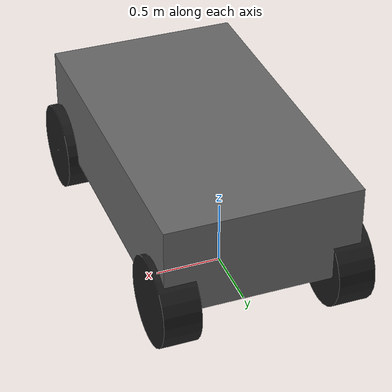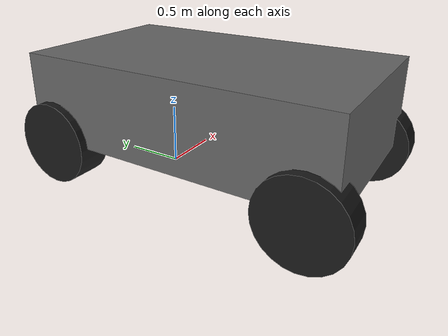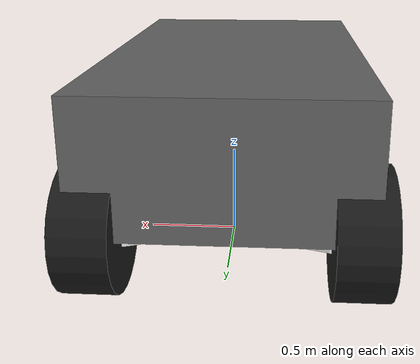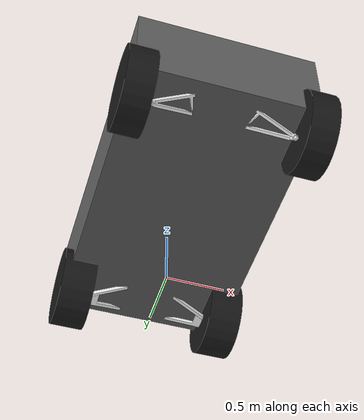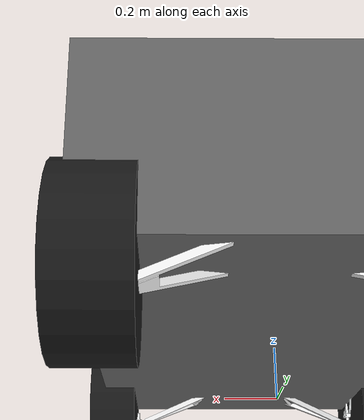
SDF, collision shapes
<?xml version="1.0"?>

  <sdf version='1.9'>
    <model name='panter'>

<!-- CHASIS -->

      <link name='CH'>
        <inertial>
          <pose>-0.00880173011979828 -0.4226795868207859 0.673550824362744 0 0 0</pose>
          <mass>343</mass>
          <inertia>
            <ixx>210.9428277</ixx>
            <ixy>0</ixy>
            <ixz>0</ixz>
            <iyy>79.04789433</iyy>
            <iyz>0</iyz>
            <izz>260.5199333</izz>
          </inertia>
        </inertial>
        <collision name='collision'>
          <pose>0 -0.44 0.675 0 0 0</pose>
          <geometry>
            <box>
              <size>1.5 2.62 0.718</size>
            </box>
          </geometry>
        </collision>
        <visual name='visual'>
          <pose>0 0 0 0 0 0</pose>
          <geometry>
            <mesh>
              <scale>1 1 1</scale>
              <uri>model://description_pkg/meshes/CH.STL</uri>
            </mesh>
          </geometry>
          <material>
            <diffuse>0.4 0.4 0.4 1</diffuse>
            <ambient>0.4 0.4 0.4 1</ambient>
          </material>
        </visual>
      </link>

<!-- AMORTIGUADOR DELANTERO DERECHO -->

      <joint name='SD01_DCH_CH_joint' type='revolute'>
        <pose relative_to='CH'>-0.364 -1.4682 0.8549600000000001 0 0 -1.5708</pose>
        <parent>CH</parent>
        <child>SD01_DCH</child>
        <axis>
          <xyz>1 0 0</xyz>
          <limit>
            <lower>0</lower>
            <upper>0</upper>
            <effort>0</effort>
            <velocity>0</velocity>
          </limit>
          <dynamics>
            <spring_reference>0</spring_reference>
            <spring_stiffness>0</spring_stiffness>
          </dynamics>
        </axis>
      </joint>
      <link name='SD01_DCH'>
        <pose relative_to='SD01_DCH_CH_joint'>0 0 0 0 0 0</pose>
        <inertial>
          <pose>0.0147151277156394 -0.0466016638374874 -0.188936395717115 0 0 0</pose>
          <mass>1.5644373485476</mass>
          <inertia>
            <ixx>0.0054735160173384201</ixx>
            <ixy>0.0002025684338576</ixy>
            <ixz>0.000799273132675563</ixz>
            <iyy>0.0053176293368268302</iyy>
            <iyz>-0.0011458003645297</iyz>
            <izz>0.00103217687096616</izz>
          </inertia>
        </inertial>
        <collision name='collision'>
          <pose>0 0 0 0 0 0</pose>
          <geometry>
            <mesh>
              <scale>1 1 1</scale>
              <uri>model://description_pkg/meshes/SD01_DCH.STL</uri>
            </mesh>
          </geometry>
        </collision>
        <visual name='visual'>
          <pose>0 0 0 0 0 0</pose>
          <geometry>
            <mesh>
              <scale>1 1 1</scale>
              <uri>model://description_pkg/meshes/SD01_DCH.STL</uri>
            </mesh>
          </geometry>
          <material>
            <diffuse>0.941176 0.941176 0.941176 1</diffuse>
            <ambient>0.941176 0.941176 0.941176 1</ambient>
          </material>
        </visual>
      </link>

<!-- AMORTIGUADOR DELANTERO IZQUIERDO -->

      <joint name='SD01_IZQ_CH_joint' type='revolute'>
        <pose relative_to='CH'>0.364 -1.4598 0.85354 0 0 -1.5708</pose>
        <parent>CH</parent>
        <child>SD01_IZQ</child>
        <axis>
          <xyz>1 0 0</xyz>
          <limit>
            <lower>0</lower>
            <upper>0</upper>
            <effort>0</effort>
            <velocity>0</velocity>
          </limit>
          <dynamics>
            <spring_reference>0</spring_reference>
            <spring_stiffness>0</spring_stiffness>
          </dynamics>
        </axis>
      </joint>
      <link name='SD01_IZQ'>
        <pose relative_to='SD01_IZQ_CH_joint'>0 0 0 0 0 0</pose>
        <inertial>
          <pose>0.023095387698848 0.0466016681758654 -0.187519014527033 0 0 0</pose>
          <mass>1.56443700619495</mass>
          <inertia>
            <ixx>0.0054896363326847001</ixx>
            <ixy>-0.00018551496856869401</ixy>
            <ixz>0.00075298015942053004</ixz>
            <iyy>0.0053176287981363899</iyy>
            <iyz>0.00114868462288693</iyz>
            <izz>0.0010160558596513799</izz>
          </inertia>
        </inertial>
        <collision name='collision'>
          <pose>0 0 0 0 0 0</pose>
          <geometry>
            <mesh>
              <scale>1 1 1</scale>
              <uri>model://description_pkg/meshes/SD01_IZQ.STL</uri>
            </mesh>
          </geometry>
        </collision>
        <visual name='visual'>
          <pose>0 0 0 0 0 0</pose>
          <geometry>
            <mesh>
              <scale>1 1 1</scale>
              <uri>model://description_pkg/meshes/SD01_IZQ.STL</uri>
            </mesh>
          </geometry>
          <material>
            <diffuse>0.941176 0.941176 0.941176 1</diffuse>
            <ambient>0.941176 0.941176 0.941176 1</ambient>
          </material>
        </visual>
      </link>

<!-- BRAZO DELANTERO SUSPENSION SUPERIOR DERECHO -->

      <joint name='SD02_DCH_CH_joint' type='revolute'>
        <pose relative_to='CH'>-0.1865 -1.6482 0.53091 0 0 -1.5708</pose>
        <parent>CH</parent>
        <child>SD02_DCH</child>
        <axis>
          <xyz>1 0 0</xyz>
          <limit>
            <lower>0</lower>
            <upper>0</upper>
            <effort>0</effort>
            <velocity>0</velocity>
          </limit>
          <dynamics>
            <spring_reference>0</spring_reference>
            <spring_stiffness>0</spring_stiffness>
          </dynamics>
        </axis>
      </joint>

      <link name='SD02_DCH'>
        <pose relative_to='SD02_DCH_CH_joint'>0 0 0 0 0 0</pose>
        <inertial>
          <pose>-0.1087663182382292 -0.2973823518047529 -0.1447752478166711 0 0 0</pose>
          <mass>0.66380871842496503</mass>
          <inertia>
            <ixx>0.01698734695551703</ixx>
            <ixy>-0.00083687007279527673</ixy>
            <ixz>-0.00043029889831467001</ixz>
            <iyy>0.0050539985067045894</iyy>
            <iyz>-0.0069223924605502883</iyz>
            <izz>0.01337316597985665</izz>
          </inertia>
        </inertial>
        <collision name='collision'>
          <pose>0 0 0 0 0 0</pose>
          <geometry>
            <mesh>
              <scale>1 1 1</scale>
              <uri>model://description_pkg/meshes/SD02_DCH.STL</uri>
            </mesh>
          </geometry>
        </collision>

        <visual name='visual'>
          <pose>0 0 0 0 0 0</pose>
          <geometry>
            <mesh>
              <scale>1 1 1</scale>
              <uri>model://description_pkg/meshes/SD02_DCH.STL</uri>
            </mesh>
          </geometry>
          <material>
            <diffuse>0.941176 0.941176 0.941176 1</diffuse>
            <ambient>0.941176 0.941176 0.941176 1</ambient>
          </material>
        </visual>
      </link>

<!-- MANGUETA DELANTERA DERECHA -->

      <joint name='MGD_DCH_SUP_joint' type='revolute'>
        <pose relative_to='CH'>-0.5819 -1.5301 0.4078 0 -0 0</pose>
        <parent>SD02_DCH</parent>
        <child>MGD_DCH</child>
        <axis>
          <xyz>0 0 1</xyz>
          <limit>
            <lower>-0.52</lower>
            <upper>0.52</upper>
            <effort>500000</effort>
            <velocity>1</velocity>
          </limit>
          <dynamics>
            <spring_reference>0</spring_reference>
            <spring_stiffness>0</spring_stiffness>
          </dynamics>
        </axis>
      </joint>

      <link name='MGD_DCH'>
        <pose relative_to='SD02_DCH'>0 0 0 0 0 0</pose>
        <inertial>
          <pose>-0.00499672613858615 0.101475946327662 0.0231953048014176 0 0 0</pose>
          <mass>0.66380871842496503</mass>
          <inertia>
            <ixx>0.01698734695551703</ixx>
            <ixy>-0.00083687007279527673</ixy>
            <ixz>-0.00043029889831467001</ixz>
            <iyy>0.0050539985067045894</iyy>
            <iyz>-0.0069223924605502883</iyz>
            <izz>0.01337316597985665</izz>
          </inertia>
        </inertial>
        <collision name='collision'>
          <pose>-0.11198 -0.51968 -0.24274 0 0 0</pose>
          <geometry>
            <mesh>
              <scale>1 1 1</scale>
              <uri>model://description_pkg/meshes/MGD_DCH.STL</uri>
            </mesh>
          </geometry>
        </collision>

        <visual name='visual'>
          <pose>-0.11198 -0.51968 -0.24274 0 0 0</pose>
          <geometry>
            <mesh>
              <scale>1 1 1</scale>
              <uri>model://description_pkg/meshes/MGD_DCH.STL</uri>
            </mesh>
          </geometry>
          <material>
            <diffuse>0.990196 1 1 1</diffuse>
            <ambient>0.990196 1 1 1</ambient>
          </material>
        </visual>
      </link>

<!-- RUEDA DELANTERA DERECHA -->

      <joint name='ED_DCH_joint' type='revolute'>
        <pose relative_to='SD02_DCH'>-0.11198 -0.51968 -0.24274 0 0 0</pose>
        <parent>MGD_DCH</parent>
        <child>ED_DCH</child>
        <axis>
          <xyz>0 1 0</xyz>
          <limit>
            <lower>-10000000000000000</lower>
            <upper>10000000000000000</upper>
          </limit>
          <dynamics>
            <spring_reference>0</spring_reference>
            <spring_stiffness>0</spring_stiffness>
          </dynamics>
        </axis>
      </joint>
      <link name='ED_DCH'>
        <pose relative_to='ED_DCH_joint'>0 0 0 0 0 0</pose>
        <inertial>
          <pose>2.29121924788522e-06 0.0201749464629289 0.00146310372559588 0 0 0</pose>
          <mass>29.142830569802499</mass>
          <inertia>
            <ixx>0.813595259424299</ixx>
            <ixy>1.6609911692007001e-08</ixy>
            <ixz>1.6098060994306599e-09</ixz>
            <iyy>1.43679321483636</iyy>
            <iyz>0.0454494090796915</iyz>
            <izz>0.816909826703764</izz>
          </inertia>

        </inertial>
        <collision name='collision'>
          <pose>0 -0.0065 0 0 1.5707 1.5707</pose>
          <geometry>
            <cylinder>
              <radius>0.343</radius>  <!-- Radio de 0.2 m -->
              <length>0.23</length>  <!-- Altura de 0.5 m -->
            </cylinder>
          </geometry>
           <surface>
          <friction>
            <ode>
              <mu>10.0</mu>
              <mu2>1.0</mu2>
            </ode>
          </friction>
        </surface>
        </collision>
        <visual name='visual'>
          <pose>0 0 0 -1.5707 0 0</pose>
          <geometry>
            <mesh>
              <scale>1 1 1</scale>
              <uri>model://description_pkg/meshes/ED_DCH.STL</uri>
            </mesh>
          </geometry>
          <material>
            <diffuse>0.1 0.1 0.1 1</diffuse>
            <ambient>0.1 0.1 0.1 1</ambient>
          </material>
        </visual>
      </link>

<!-- BRAZO DELANTERO SUSPENSION SUPERIOR IZQUIERDA -->

      <joint name='SD02_IZQ_CH_joint' type='revolute'>
        <pose relative_to='CH'>0.1865 -1.6482 0.53091 0 0 -1.5708</pose>
        <parent>CH</parent>
        <child>SD02_IZQ</child>
        <axis>
          <xyz>1 0 0</xyz>
          <limit>
            <lower>0</lower>
            <upper>0</upper>
            <effort>0</effort>
            <velocity>0</velocity>
          </limit>
          <dynamics>
            <spring_reference>0</spring_reference>
            <spring_stiffness>0</spring_stiffness>
          </dynamics>
        </axis>
      </joint>
      <link name='SD02_IZQ'>
        <pose relative_to='SD02_IZQ_CH_joint'>0 0 0 0 0 0</pose>
        <inertial>
          <pose>-0.1133703115010046 0.1621182424082311 -0.1160946284954628 0 0 0</pose>
          <mass>1.280205693056365</mass>
          <inertia>
            <ixx>0.049317670380361653</ixx>
            <ixy>0.00043968632795071341</ixy>
            <ixz>-0.00033154494803605197</ixz>
            <iyy>0.014709835062025479</iyy>
            <iyz>0.020762005517170098</iyz>
            <izz>0.037492705463795607</izz>
          </inertia>
        </inertial>
        <collision name='collision'>
          <pose>0 0 0 0 0 0</pose>
          <geometry>
            <mesh>
              <scale>1 1 1</scale>
              <uri>model://description_pkg/meshes/SD02_IZQ.STL</uri>
            </mesh>
          </geometry>
        </collision>
        <visual name='visual'>
          <pose>0 0 0 0 0 0</pose>
          <geometry>
            <mesh>
              <scale>1 1 1</scale>
              <uri>model://description_pkg/meshes/SD02_IZQ.STL</uri>
            </mesh>
          </geometry>
          <material>
            <diffuse>0.941176 0.941176 0.941176 1</diffuse>
            <ambient>0.941176 0.941176 0.941176 1</ambient>
          </material>
        </visual>
      </link>
<!-- MANGUETA DELANTERA IZQUIERDA -->

      <joint name='MGD_IZQ_SUP_joint' type='revolute'>
        <pose relative_to='CH'>0.5819 -1.5309 0.4072 0 -0 0</pose>
        <parent>SD02_IZQ</parent>
        <child>MGD_IZQ</child>
        <axis>
          <xyz>0 0 1</xyz>
          <limit>
            <lower>-0.52</lower>
            <upper>0.52</upper>
            <effort>500000</effort>
            <velocity>1</velocity>
          </limit>
          <dynamics>
            <spring_reference>0</spring_reference>
            <spring_stiffness>0</spring_stiffness>
          </dynamics>
        </axis>
      </joint>

      <link name='MGD_IZQ'>
        <pose relative_to='SD02_IZQ'>0 0 0 0 0 0</pose>
        <inertial>
          <pose>-0.00497345711760122 -0.210444823308728 0.028708631857455 0 0 0</pose>
          <mass>0.66380871842496503</mass>
          <inertia>
            <ixx>0.01698734695551703</ixx>
            <ixy>-0.00083687007279527673</ixy>
            <ixz>-0.00043029889831467001</ixz>
            <iyy>0.0050539985067045894</iyy>
            <iyz>-0.0069223924605502883</iyz>
            <izz>0.01337316597985665</izz>
          </inertia>
        </inertial>
        <visual name='visual'>
          <pose>-0.11217 0.5208700000000001 -0.23886 0 0 0</pose>
          <geometry>
            <mesh>
              <scale>1 1 1</scale>
              <uri>model://description_pkg/meshes/MGD_IZQ.STL</uri>
            </mesh>
          </geometry>
          <material>
            <diffuse>0.990196 1 1 1</diffuse>
            <ambient>0.990196 1 1 1</ambient>
          </material>
        </visual>

         <collision name='collision'>
          <pose>-0.11217 0.5208700000000001 -0.23886 0 0 0</pose>
          <geometry>
            <mesh>
              <scale>1 1 1</scale>
              <uri>model://description_pkg/meshes/MGD_IZQ.STL</uri>
            </mesh>
          </geometry>
        </collision>

      </link>

<!-- RUEDA DELANTERA IZQUIERDA -->

      <joint name='ED_IZQ_joint' type='revolute'>
        <pose relative_to='SD02_IZQ'>-0.11217 0.5208700000000001 -0.23886 0 0 0</pose>
        <parent>MGD_IZQ</parent>
        <child>ED_IZQ</child>
        <axis>
          <xyz>0 1 0</xyz>
          <limit>
            <lower>-10000000000000000</lower>
            <upper>10000000000000000</upper>
          </limit>
          <dynamics>
            <spring_reference>0</spring_reference>
            <spring_stiffness>0</spring_stiffness>
          </dynamics>
        </axis>
      </joint>
      <link name='ED_IZQ'>
        <pose relative_to='ED_IZQ_joint'>0 0 0 0 0 0</pose>
        <inertial>
          <pose>9.83891827921468e-06 0 0.00124512879040783 0 0 0</pose>
          <mass>29.139362499072298</mass>
          <inertia>
            <ixx>0.81359465817769605</ixx>
            <ixy>6.5452223578031494e-08</ixy>
            <ixz>-6.1431454367001799e-09</ixz>
            <iyy>1.43775571114071</iyy>
            <iyz>-0.038315078867220201</iyz>
            <izz>0.81594671292084797</izz>
          </inertia>
        </inertial>
        <collision name='collision'>
          <pose>0 0.0075 0 0 1.5707 1.5707</pose>
          <geometry>
            <cylinder>
              <radius>0.343</radius>  <!-- Radio de 0.2 m -->
              <length>0.23</length>  <!-- Altura de 0.5 m -->
            </cylinder>

          </geometry>
          <friction>
            <ode>
              <mu>10.0</mu>
              <mu2>1.0</mu2>
            </ode>
          </friction>
        </collision>
        <visual name='visual'>
          <pose>0 0 0 1.5707 0 0</pose>
          <geometry>
            <mesh>
              <scale>1 1 1</scale>
              <uri>model://description_pkg/meshes/ED_IZQ.STL</uri>
            </mesh>
          </geometry>
          <material>
            <diffuse>0.1 0.1 0.1 1</diffuse>
            <ambient>0.1 0.1 0.1 1</ambient>
          </material>
        </visual>
      </link>

<!-- BRAZO DELANTERO SUSPENSION INFERIOR DERECHA -->

      <joint name='SD03_DCH_CH_joint' type='revolute'>
        <pose relative_to='CH'>-0.151 -1.6306 0.37054 0 0 -1.5708</pose>
        <parent>CH</parent>
        <child>SD03_DCH</child>
        <axis>
          <xyz>1 0 0</xyz>
          <limit>
            <lower>0</lower>
            <upper>0</upper>
            <effort>0</effort>
            <velocity>0</velocity>
          </limit>
          <dynamics>
            <spring_reference>0</spring_reference>
            <spring_stiffness>0</spring_stiffness>
          </dynamics>
        </axis>
      </joint>
      <link name='SD03_DCH'>
        <pose relative_to='SD03_DCH_CH_joint'>0 0 0 0 0 0</pose>
        <inertial>
          <pose>-0.09795184720365779 -0.169078002158508 -0.07649493446681931 0 0 0</pose>
          <mass>0.39524126003458698</mass>
          <inertia>
            <ixx>0.0050301102362627099</ixx>
            <ixy>0.000168676429607526</ixy>
            <ixz>4.7840023879892099e-05</ixz>
            <iyy>0.00114327113657789</iyy>
            <iyz>-0.0017776660568389201</iyz>
            <izz>0.0046170680768928603</izz>
          </inertia>
        </inertial>
        <collision name='collision'>
          <pose>0 0 0 0 0 0</pose>
          <geometry>
            <mesh>
              <scale>1 1 1</scale>
              <uri>model://description_pkg/meshes/SD03_DCH.STL</uri>
            </mesh>
          </geometry>
        </collision>
        <visual name='visual'>
          <pose>0 0 0 0 0 0</pose>
          <geometry>
            <mesh>
              <scale>1 1 1</scale>
              <uri>model://description_pkg/meshes/SD03_DCH.STL</uri>
            </mesh>
          </geometry>
          <material>
            <diffuse>0.941176 0.941176 0.941176 1</diffuse>
            <ambient>0.941176 0.941176 0.941176 1</ambient>
          </material>
        </visual>
      </link>

<!-- BRAZO DELANTERO SUSPENSION INFERIOR IZQUIERDA -->

      <joint name='SD03_IZQ_CH_joint' type='revolute'>
        <pose relative_to='CH'>0.151 -1.6306 0.37054 0 0 -1.5708</pose>
        <parent>CH</parent>
        <child>SD03_IZQ</child>
        <axis>
          <xyz>1 0 0.07</xyz>
          <limit>
            <lower>0</lower>
            <upper>0</upper>
            <effort>0</effort>
            <velocity>0</velocity>
          </limit>
          <dynamics>
            <spring_reference>0</spring_reference>
            <spring_stiffness>0</spring_stiffness>
          </dynamics>
        </axis>
      </joint>
      <link name='SD03_IZQ'>
        <pose relative_to='SD03_IZQ_CH_joint'>0 0 0 0 0 0</pose>
        <inertial>
          <pose>-0.09736755152887699 0.158067753702783 -0.06966068353578229 0 0 0</pose>
          <mass>0.46889861481981798</mass>
          <inertia>
            <ixx>0.0050591155785237804</ixx>
            <ixy>-0.000121765335801827</ixy>
            <ixz>1.81818642259916e-05</ixz>
            <iyy>0.00122147601558512</iyy>
            <iyz>0.0017413610960066201</iyz>
            <izz>0.0047991710550899097</izz>
          </inertia>
        </inertial>
        <collision name='collision'>
          <pose>0 0 0 0 0 0</pose>
          <geometry>
            <mesh>
              <scale>1 1 1</scale>
              <uri>model://description_pkg/meshes/SD03_IZQ.STL</uri>
            </mesh>
          </geometry>
        </collision>
        <visual name='visual'>
          <pose>0 0 0 0 0 0</pose>
          <geometry>
            <mesh>
              <scale>1 1 1</scale>
              <uri>model://description_pkg/meshes/SD03_IZQ.STL</uri>
            </mesh>
          </geometry>
          <material>
            <diffuse>0.941176 0.941176 0.941176 1</diffuse>
            <ambient>0.941176 0.941176 0.941176 1</ambient>
          </material>
        </visual>
      </link>

<!-- AMORTIGUADOR TRASERO DERECHO -->

      <joint name='ST01_DCH_CH_joint' type='revolute'>
        <pose relative_to='CH'>-0.3275 0.66468 0.79122 0 0 -1.5708</pose>
        <parent>CH</parent>
        <child>ST01_DCH</child>
        <axis>
          <xyz>1 0 0</xyz>
          <limit>
            <lower>0</lower>
            <upper>0</upper>
            <effort>0</effort>
            <velocity>0</velocity>
          </limit>
          <dynamics>
            <spring_reference>0</spring_reference>
            <spring_stiffness>0</spring_stiffness>
          </dynamics>
        </axis>
      </joint>
      <link name='ST01_DCH'>
        <pose relative_to='ST01_DCH_CH_joint'>0 0 0 0 0 0</pose>
        <inertial>
          <pose>0.00850083095421039 -0.0657819927229779 -0.159438279696522 0 0 0</pose>
          <mass>1.6865239792604101</mass>
          <inertia>
            <ixx>0.0063338001559969798</ixx>
            <ixy>-1.45261475354718e-05</ixy>
            <ixz>-3.5266726696614102e-05</ixz>
            <iyy>0.0055250803137681702</iyy>
            <iyz>-0.0019468091581655901</iyz>
            <izz>0.0016083669147816399</izz>
          </inertia>
        </inertial>
        <collision name='collision'>
          <pose>0 0 0 0 0 0</pose>
          <geometry>
            <mesh>
              <scale>1 1 1</scale>
              <uri>model://description_pkg/meshes/ST01_DCH.STL</uri>
            </mesh>
          </geometry>
        </collision>
        <visual name='visual'>
          <pose>0 0 0 0 0 0</pose>
          <geometry>
            <mesh>
              <scale>1 1 1</scale>
              <uri>model://description_pkg/meshes/ST01_DCH.STL</uri>
            </mesh>
          </geometry>
          <material>
            <diffuse>0.941176 0.941176 0.941176 1</diffuse>
            <ambient>0.941176 0.941176 0.941176 1</ambient>
          </material>
        </visual>
      </link>

<!-- AMORTIGUADOR TRASERO IZQUIERDO -->

      <joint name='ST01_IZQ_CH_joint' type='revolute'>
        <pose relative_to='CH'>0.3275 0.66468 0.79122 0 0 -1.5708</pose>
        <parent>CH</parent>
        <child>ST01_IZQ</child>
        <axis>
          <xyz>1 0 0</xyz>
          <limit>
            <lower>0</lower>
            <upper>0</upper>
            <effort>0</effort>
            <velocity>0</velocity>
          </limit>
          <dynamics>
            <spring_reference>0</spring_reference>
            <spring_stiffness>0</spring_stiffness>
          </dynamics>
        </axis>
      </joint>
      <link name='ST01_IZQ'>
        <pose relative_to='ST01_IZQ_CH_joint'>0 0 0 0 0 0</pose>
        <inertial>
          <pose>0.00849916904573988 0.0657819927228204 -0.159438279696458 0 0 0</pose>
          <mass>1.6865239792604101</mass>
          <inertia>
            <ixx>0.0063338001559970197</ixx>
            <ixy>-1.45261475353967e-05</ixy>
            <ixz>3.5266726696435297e-05</ixz>
            <iyy>0.0055250803137681997</iyy>
            <iyz>0.0019468091581656001</iyz>
            <izz>0.00160836691478163</izz>
          </inertia>
        </inertial>
        <collision name='collision'>
          <pose>0 0 0 0 0 0</pose>
          <geometry>
            <mesh>
              <scale>1 1 1</scale>
              <uri>model://description_pkg/meshes/ST01_IZQ.STL</uri>
            </mesh>
          </geometry>
        </collision>
        <visual name='visual'>
          <pose>0 0 0 0 0 0</pose>
          <geometry>
            <mesh>
              <scale>1 1 1</scale>
              <uri>model://description_pkg/meshes/ST01_IZQ.STL</uri>
            </mesh>
          </geometry>
          <material>
            <diffuse>0.941176 0.941176 0.941176 1</diffuse>
            <ambient>0.941176 0.941176 0.941176 1</ambient>
          </material>
        </visual>
      </link>

<!-- BRAZO TRASERO SUSPENSION SUPERIOR DERECHO -->

      <joint name='ST02_DCH_CH_joint' type='revolute'>
        <pose relative_to='CH'>-0.19 0.80618 0.45222 0 0 -1.5708</pose>
        <parent>CH</parent>
        <child>ST02_DCH</child>
        <axis>
          <xyz>1 0 0</xyz>
          <limit>
            <lower>0</lower>
            <upper>0</upper>
            <effort>0</effort>
            <velocity>0</velocity>
          </limit>
          <dynamics>
            <spring_reference>0</spring_reference>
            <spring_stiffness>0</spring_stiffness>
          </dynamics>
        </axis>
      </joint>
      <link name='ST02_DCH'>
        <pose relative_to='ST02_DCH_CH_joint'>0 0 0 0 0 0</pose>
        <inertial>
          <pose>0.1500001860261832 -0.2676662614145961 -0.0810993046741976 0 0 0</pose>
          <mass>1.403064128651641</mass>
          <inertia>
            <ixx>0.03070442042787137</ixx>
            <ixy>7.837911377567286e-08</ixy>
            <ixz>4.1940548251677423e-06</ixz>
            <iyy>0.0074810028604958903</iyy>
            <iyz>-0.01015721426313345</iyz>
            <izz>0.026478148856146522</izz>
          </inertia>
        </inertial>
        <collision name='collision'>
          <pose>0 0 0 0 0 0</pose>
          <geometry>
            <mesh>
              <scale>1 1 1</scale>
              <uri>model://description_pkg/meshes/ST02_DCH.STL</uri>
            </mesh>
          </geometry>
        </collision>
        <visual name='visual'>
          <pose>0 0 0 0 0 0</pose>
          <geometry>
            <mesh>
              <scale>1 1 1</scale>
              <uri>model://description_pkg/meshes/ST02_DCH.STL</uri>
            </mesh>
          </geometry>
          <material>
            <diffuse>0.941176 0.941176 0.941176 1</diffuse>
            <ambient>0.941176 0.941176 0.941176 1</ambient>
          </material>
        </visual>

      </link>

<!-- MANGUETA TRASERA DERECHA -->
      <joint name='MGT_DCH_joint' type='fixed'>
        <pose relative_to='ST02_DCH'>0.15 -0.51022 -0.14431 0 -0 0</pose>
        <parent>ST02_DCH</parent>
        <child>MGT_DCH</child>
      </joint>

      <link name='MGT_DCH'>
        <pose relative_to='ST02_DCH'>0 0 0 0 0 0</pose>
        <inertial>
          <pose>-0.000703773718821132 0.0238865488241629 -0.000242700430142184 0 0 0</pose>
          <mass>0.66380871842496503</mass>
          <inertia>
            <ixx>0.01698734695551703</ixx>
            <ixy>-0.00083687007279527673</ixy>
            <ixz>-0.00043029889831467001</ixz>
            <iyy>0.0050539985067045894</iyy>
            <iyz>-0.0069223924605502883</iyz>
            <izz>0.01337316597985665</izz>
          </inertia>
        </inertial>

      <collision name='collision'>
          <pose>0.15 -0.51022 -0.14431 0 0 0</pose>
          <geometry>
            <mesh>
              <scale>1 1 1</scale>
              <uri>model://description_pkg/meshes/MGT_DCH.STL</uri>
            </mesh>
          </geometry>
        </collision>
        <visual name='visual'>
          <pose>0.15 -0.51022 -0.14431 0 0 0</pose>
          <geometry>
            <mesh>
              <scale>1 1 1</scale>
              <uri>model://description_pkg/meshes/MGT_DCH.STL</uri>
            </mesh>
          </geometry>
          <material>
            <diffuse>0.941176 0.941176 0.941176 1</diffuse>
            <ambient>0.941176 0.941176 0.941176 1</ambient>
          </material>
        </visual>
      </link>

<!-- RUEDA TRASERA DERECHA -->

      <joint name='ET_DCH_joint' type='revolute'>
        <pose relative_to='ST02_DCH'>0.15 -0.51022 -0.14431 0 0 0</pose>
        <parent>ST02_DCH</parent>
        <child>ET_DCH</child>
        <axis>
          <xyz>0 1 0</xyz>
          <limit>
            <lower>-10000000000000000</lower>
            <upper>10000000000000000</upper>
          </limit>
          <dynamics>
            <spring_reference>0</spring_reference>
            <spring_stiffness>0</spring_stiffness>
          </dynamics>
        </axis>
      </joint>
      <link name='ET_DCH'>
        <pose relative_to='ET_DCH_joint'>0 0 0 0 0 0</pose>
        <inertial>
          <pose>-0.0007037737188211321 0.0238865488241629 -0.000242700430142184 0 0 0</pose>
          <mass>31.147989855422999</mass>
          <inertia>
            <ixx>0.86273332278327397</ixx>
            <ixy>-1.41751435672682e-05</ixy>
            <ixz>-6.4485089057557702e-09</ixz>
            <iyy>1.39706663655937</iyy>
            <iyz>-0.0054298463387940903</iyz>
            <izz>0.86274117439459197</izz>
          </inertia>
        </inertial>
        <collision name='collision'>
          <pose>0 0.025 0 0 1.5707 1.5707</pose>
          <geometry>
            <cylinder>
              <radius>0.343</radius>  <!-- Radio de 0.2 m -->
              <length>0.285</length>  <!-- Altura de 0.5 m -->
            </cylinder>
          </geometry>
          <friction>
            <ode>
              <mu>10.0</mu>
              <mu2>1.0</mu2>
            </ode>
          </friction>
        </collision>
        <visual name='visual'>
          <pose>0 0 0 1.5707 0 0</pose>
          <geometry>
            <mesh>
              <scale>1 1 1</scale>
              <uri>model://description_pkg/meshes/ET_DCH.STL</uri>
            </mesh>
          </geometry>
          <material>
            <diffuse>0.1 0.1 0.1 1</diffuse>
            <ambient>0.1 0.1 0.1 1</ambient>
          </material>
        </visual>
      </link>

<!-- BRAZO TRASERO SUSPENSION SUPERIOR IZQUIERDO -->

      <joint name='ST02_IZQ_CH_joint' type='revolute'>
        <pose relative_to='CH'>0.19 0.80618 0.45222 0 0 -1.5708</pose>
        <parent>CH</parent>
        <child>ST02_IZQ</child>
        <axis>
          <xyz>1 0 0</xyz>
          <limit>
            <lower>0</lower>
            <upper>0</upper>
            <effort>0</effort>
            <velocity>0</velocity>
          </limit>
          <dynamics>
            <spring_reference>0</spring_reference>
            <spring_stiffness>0</spring_stiffness>
          </dynamics>
        </axis>
      </joint>
      <link name='ST02_IZQ'>
        <pose relative_to='ST02_IZQ_CH_joint'>0 0 0 0 0 0</pose>
        <inertial>
          <pose>0.150000005167412 0.17487915113979 -0.0332493411124752 0 0 0</pose>
          <mass>0.81678290918779095</mass>
          <inertia>
            <ixx>0.0080584754168778402</ixx>
            <ixy>9.9404259756486797e-10</ixy>
            <ixz>4.3932726784710001e-09</ixz>
            <iyy>0.00136969060130727</iyy>
            <iyz>0.00150446688084042</iyz>
            <izz>0.0086951472225705196</izz>
          </inertia>
        </inertial>
        <collision name='collision'>
          <pose>0 0 0 0 0 0</pose>
          <geometry>
            <mesh>
              <scale>1 1 1</scale>
              <uri>model://description_pkg/meshes/ST02_IZQ.STL</uri>
            </mesh>
          </geometry>
        </collision>
        <visual name='visual'>
          <pose>0 0 0 0 0 0</pose>
          <geometry>
            <mesh>
              <scale>1 1 1</scale>
              <uri>model://description_pkg/meshes/ST02_IZQ.STL</uri>
            </mesh>
          </geometry>
          <material>
            <diffuse>0.941176 0.941176 0.941176 1</diffuse>
            <ambient>0.941176 0.941176 0.941176 1</ambient>
          </material>
        </visual>
      </link>

<!-- BRAZO TRASERO SUSPENSION INFERIOR DERECHO -->

      <joint name='ST03_DCH_CH_joint' type='revolute'>
        <pose relative_to='CH'>-0.178 0.80618 0.34222 0 0 -1.5708</pose>
        <parent>CH</parent>
        <child>ST03_DCH</child>
        <axis>
          <xyz>1 0 0</xyz>
          <limit>
            <lower>0</lower>
            <upper>0</upper>
            <effort>0</effort>
            <velocity>0</velocity>
          </limit>
          <dynamics>
            <spring_reference>0</spring_reference>
            <spring_stiffness>0</spring_stiffness>
          </dynamics>
        </axis>
      </joint>
      <link name='ST03_DCH'>
        <pose relative_to='ST03_DCH_CH_joint'>0 0 0 0 0 0</pose>
        <inertial>
          <pose>0.150000000000001 -0.164533605888152 -0.0525148439282279 0 0 0</pose>
          <mass>0.34106162689435399</mass>
          <inertia>
            <ixx>0.0022793592813791399</ixx>
            <ixy>3.8011015168450297e-18</ixy>
            <ixz>2.2538659313411399e-18</ixz>
            <iyy>0.00053201044082269299</iyy>
            <iyz>-0.00062761170646999896</iyz>
            <izz>0.00233995796668447</izz>
          </inertia>
        </inertial>
        <collision name='collision'>
          <pose>0 0 0 0 0 0</pose>
          <geometry>
            <mesh>
              <scale>1 1 1</scale>
              <uri>model://description_pkg/meshes/ST03_DCH.STL</uri>
            </mesh>
          </geometry>
        </collision>
        <visual name='visual'>
          <pose>0 0 0 0 0 0</pose>
          <geometry>
            <mesh>
              <scale>1 1 1</scale>
              <uri>model://description_pkg/meshes/ST03_DCH.STL</uri>
            </mesh>
          </geometry>
          <material>
            <diffuse>0.941176 0.941176 0.941176 1</diffuse>
            <ambient>0.941176 0.941176 0.941176 1</ambient>
          </material>
        </visual>
      </link>

<!-- BRAZO TRASERO SUSPENSION INFERIOR IZQUIERDO -->

      <joint name='ST03_IZQ_CH_joint' type='revolute'>
        <pose relative_to='CH'>0.178 0.80618 0.34222 0 0 -1.5708</pose>
        <parent>CH</parent>
        <child>ST03_IZQ</child>
        <axis>
          <xyz>1 0 0</xyz>
          <limit>
            <lower>0</lower>
            <upper>0</upper>
            <effort>0</effort>
            <velocity>0</velocity>
          </limit>
          <dynamics>
            <spring_reference>0</spring_reference>
            <spring_stiffness>0</spring_stiffness>
          </dynamics>
        </axis>
      </joint>
      <link name='ST03_IZQ'>
        <pose relative_to='ST03_IZQ_CH_joint'>0 0 0 0 0 0</pose>
        <inertial>
          <pose>0.149999999999999 0.164533605888154 -0.0525148439282281 0 0 0</pose>
          <mass>0.34106162689435499</mass>
          <inertia>
            <ixx>0.0022793592813791499</ixx>
            <ixy>9.8642341037799605e-18</ixy>
            <ixz>-2.42692932918681e-18</ixz>
            <iyy>0.00053201044082269396</iyy>
            <iyz>0.000627611706470002</iyz>
            <izz>0.00233995796668448</izz>
          </inertia>
        </inertial>
        <collision name='collision'>
          <pose>0 0 0 0 0 0</pose>
          <geometry>
            <mesh>
              <scale>1 1 1</scale>
              <uri>model://description_pkg/meshes/ST03_IZQ.STL</uri>
            </mesh>
          </geometry>
        </collision>
        <visual name='visual'>
          <pose>0 0 0 0 0 0</pose>
          <geometry>
            <mesh>
              <scale>1 1 1</scale>
              <uri>model://description_pkg/meshes/ST03_IZQ.STL</uri>
            </mesh>
          </geometry>
          <material>
            <diffuse>0.941176 0.941176 0.941176 1</diffuse>
            <ambient>0.941176 0.941176 0.941176 1</ambient>
          </material>
        </visual>
      </link>

<!-- MANGUETA TRASERA IZQUIERDA 400000000000000400444404040400404040404004 -->
      <joint name='MGT_IZQ_joint' type='fixed'>
        <pose relative_to='ST02_IZQ'>0 -0.20929 0.36039 1.5708 -1.3673 -1.5708</pose>
        <parent>ST02_IZQ</parent>
        <child>MGT_IZQ</child>
      </joint>

      <link name='MGT_IZQ'>
        <pose relative_to='ST02_IZQ'>0.15 0.35805 -0.078868 -1.5708 1.5606 1.5708</pose>
        <inertial>
          <pose>0.0699882193922642 -0.0306022880155127 3.91468086502478E-07 0 0 0</pose>
          <mass>0.66380871842496503</mass>
          <inertia>
            <ixx>0.01698734695551703</ixx>
            <ixy>-0.00083687007279527673</ixy>
            <ixz>-0.00043029889831467001</ixz>
            <iyy>0.0050539985067045894</iyy>
            <iyz>-0.0069223924605502883</iyz>
            <izz>0.01337316597985665</izz>
          </inertia>
        </inertial>

      <collision name='collision'>
          <pose>0 0 0 0 0 0</pose>
          <geometry>
            <mesh>
              <scale>1 1 1</scale>
              <uri>model://description_pkg/meshes/MGT_IZQ.STL</uri>
            </mesh>
          </geometry>
        </collision>
        <visual name='visual'>
          <pose>0 0 0 0 0 0</pose>
          <geometry>
            <mesh>
              <scale>1 1 1</scale>
              <uri>model://description_pkg/meshes/MGT_IZQ.STL</uri>
            </mesh>
          </geometry>
          <material>
            <diffuse>0.941176 0.941176 0.941176 1</diffuse>
            <ambient>0.941176 0.941176 0.941176 1</ambient>
          </material>
        </visual>
      </link>

<!-- RUEDA TRASERA IZQUIERDA -->

      <joint name='ET_IZQ_joint' type='revolute'>
        <pose relative_to='MGT_IZQ'>0.067 -0.144 0 3.1314 1.5708 0</pose>
        <parent>MGT_IZQ</parent>
        <child>ET_IZQ</child>
        <axis>
          <xyz>0 1 0</xyz>
          <limit>
            <lower>-10000000000000000</lower>
            <upper>10000000000000000</upper>
          </limit>
          <dynamics>
            <spring_reference>0</spring_reference>
            <spring_stiffness>0</spring_stiffness>
          </dynamics>
        </axis>
      </joint>
      <link name='ET_IZQ'>
        <pose relative_to='ET_IZQ_joint'>0 0 0 0 0 0</pose>
        <inertial>
          <pose>-0.0007037737188211321 0.0238865488241629 -0.000242700430142184 0 0 0</pose>
          <mass>31.147989855422999</mass>
          <inertia>
            <ixx>0.86273332278327397</ixx>
            <ixy>-1.41751435672682e-05</ixy>
            <ixz>-6.4485089057557702e-09</ixz>
            <iyy>1.39706663655937</iyy>
            <iyz>-0.0054298463387940903</iyz>
            <izz>0.86274117439459197</izz>
          </inertia>
        </inertial>
        <collision name='collision'>
          <pose>0 -0.038 0 0 1.5707 1.5707</pose>
          <geometry>
            <cylinder>
              <radius>0.343</radius>  <!-- Radio de 0.2 m -->
              <length>0.285</length>  <!-- Altura de 0.5 m -->
            </cylinder>
          </geometry>
          <friction>
            <ode>
              <mu>10.0</mu>
              <mu2>1.0</mu2>
            </ode>
          </friction>
        </collision>
        <visual name='visual'>
          <pose>0 0 0 0 0 0 </pose>
          <geometry>
            <mesh>
              <scale>1 1 1</scale>
              <uri>model://description_pkg/meshes/ET_IZQ.STL</uri>
            </mesh>
          </geometry>
          <material>
            <diffuse>0.1 0.1 0.1 1</diffuse>
            <ambient>0.1 0.1 0.1 1</ambient>
          </material>
        </visual>
      </link>

      <plugin filename="libignition-gazebo-ackermann-steering-system.so" name="ignition::gazebo::systems::AckermannSteering">

          <left_steering_joint>MGD_IZQ_SUP_joint</left_steering_joint>
          <left_joint>ED_IZQ_joint</left_joint>
          <right_steering_joint>MGD_DCH_SUP_joint</right_steering_joint>
          <right_joint>ED_DCH_joint</right_joint>

          <wheel_separation>1.41</wheel_separation>
          <wheel_radius>0.343</wheel_radius>
          <min_velocity>-15.0</min_velocity>
          <max_velocity>15.0</max_velocity>
          <min_acceleration>-0.5</min_acceleration>
          <max_acceleration>0.5</max_acceleration>

          <topic>cmd_vel</topic>

        </plugin>

    </model>

  </sdf>
